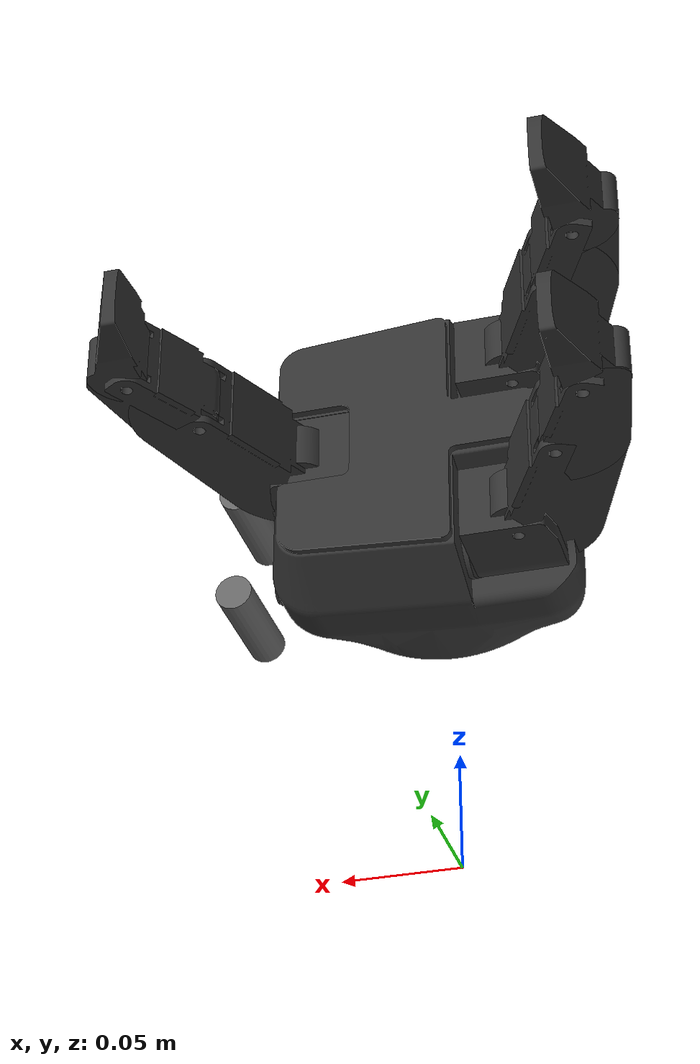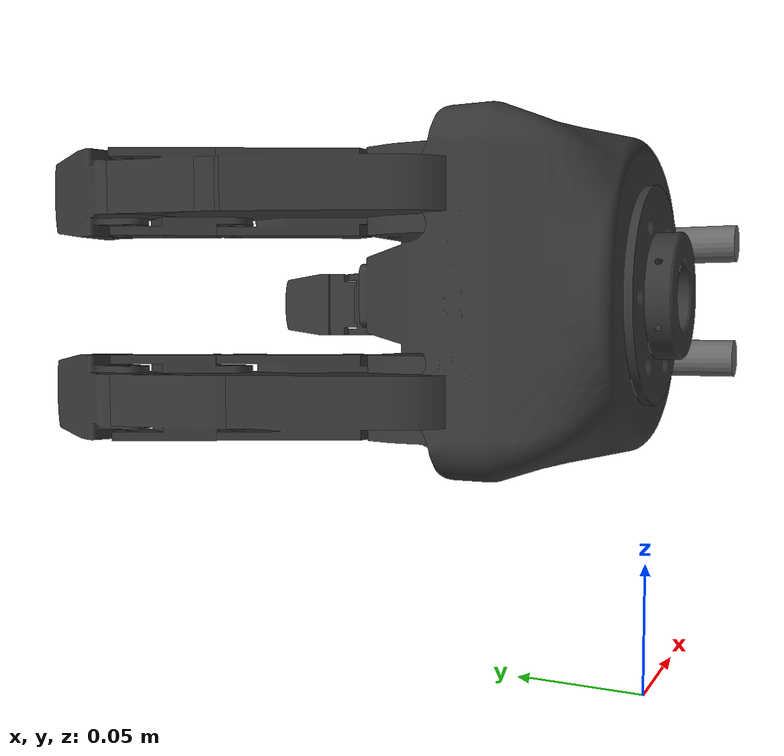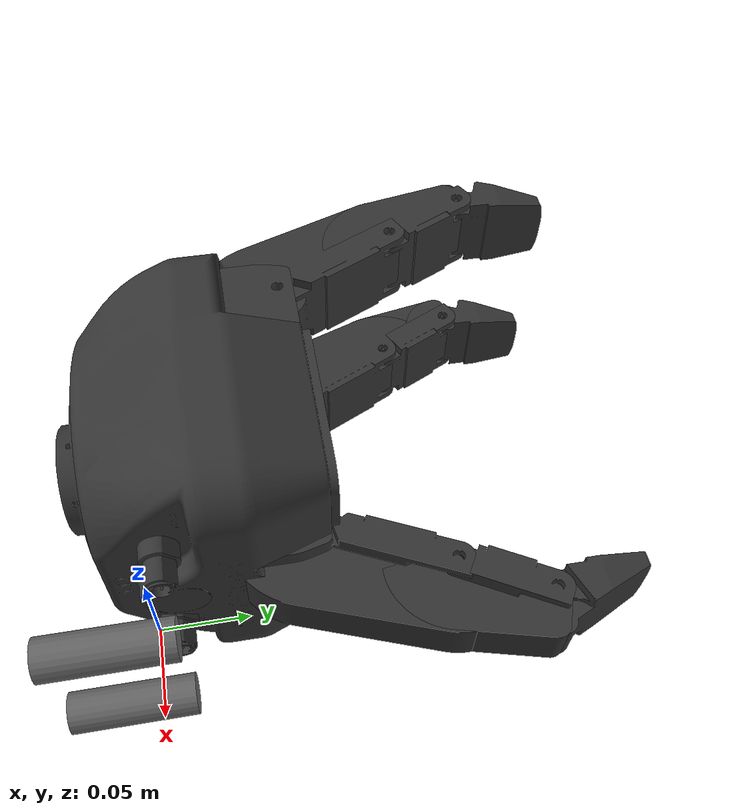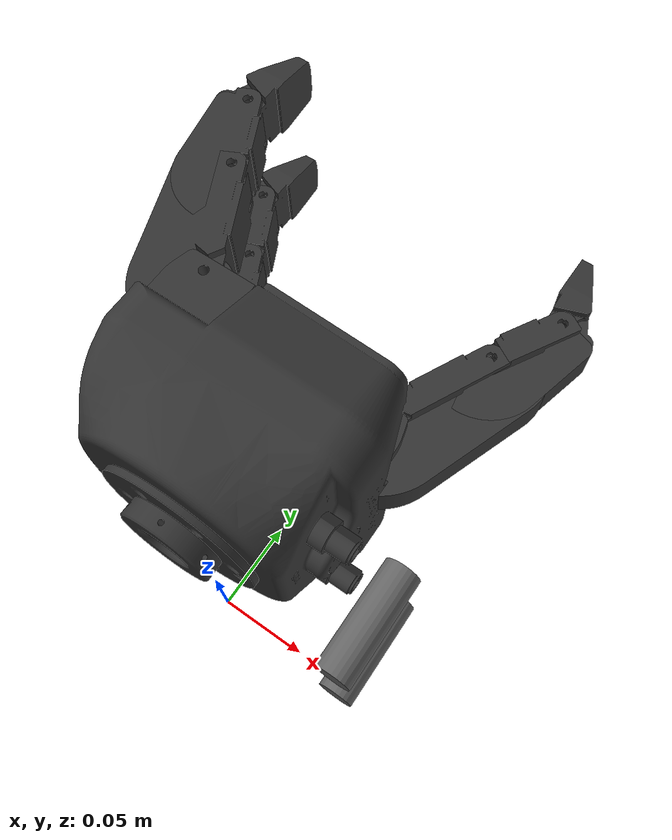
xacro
<?xml version="1.0"?>
<robot xmlns:xacro="http://www.ros.org/wiki/xacro" name="robotiq_3f_calibration">
  <xacro:include filename="$(find robotiq_3f_description)/urdf/robotiq_3f.xacro"/>

  <link name="world"/>
  <xacro:robotiq_3f_gripper
    parent="world"
    prefix=""
    include_cable_plugs="true"
    articulated="true"
    calibrate_middle_pivots="true">
    <!-- Orient the palm vertically for convenient side/front inspection. -->
    <origin xyz="0 0 0.15" rpy="0 0 0"/>
  </xacro:robotiq_3f_gripper>
</robot>

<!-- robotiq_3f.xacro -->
<robot xmlns:xacro="http://www.ros.org/wiki/xacro">

  <xacro:macro name="robotiq_3f_part" params="prefix link_name mesh_name">
    <link name="${prefix}${link_name}">
      <visual>
        <geometry>
          <mesh filename="package://robotiq_3f_description/meshes/visual/${mesh_name}.stl"/>
        </geometry>
        <material name="Robotiq-Black">
          <color rgba="0.2 0.2 0.2 1.0"/>
        </material>
      </visual>
      <collision>
        <geometry>
          <mesh filename="package://robotiq_3f_description/meshes/collision/${mesh_name}.stl"/>
        </geometry>
      </collision>
      <inertial>
        <mass value="0.01"/>
        <inertia ixx="1e-6" ixy="0" ixz="0" iyy="1e-6" iyz="0" izz="1e-6"/>
      </inertial>
    </link>
  </xacro:macro>

  <xacro:macro name="robotiq_3f_fixed_joint" params="prefix joint_name parent child xyz rpy">
    <joint name="${prefix}${joint_name}" type="fixed">
      <parent link="${prefix}${parent}"/>
      <child link="${prefix}${child}"/>
      <origin xyz="${xyz}" rpy="${rpy}"/>
    </joint>
  </xacro:macro>

  <xacro:macro name="robotiq_3f_articulated_joint"
               params="prefix joint_name parent child xyz rpy axis lower upper mesh_xyz:='0 0 0'">
    <link name="${prefix}${joint_name}_frame"/>
    <joint name="${prefix}${joint_name}" type="revolute">
      <parent link="${prefix}${parent}"/>
      <child link="${prefix}${joint_name}_frame"/>
      <origin xyz="${xyz}" rpy="0 0 0"/>
      <axis xyz="${axis}"/>
      <limit lower="${lower}" upper="${upper}" effort="100" velocity="1.25"/>
      <dynamics damping="1.0" friction="0.1"/>
    </joint>
    <joint name="${prefix}${joint_name}_mesh_joint" type="fixed">
      <parent link="${prefix}${joint_name}_frame"/>
      <child link="${prefix}${child}"/>
      <origin xyz="${mesh_xyz}" rpy="${rpy}"/>
    </joint>
  </xacro:macro>

  <xacro:macro name="robotiq_3f_pivot_calibration_joint"
               params="prefix joint_name parent child xyz rpy axis lower upper">
    <link name="${prefix}${joint_name}_pivot_x_link"/>
    <joint name="${prefix}${joint_name}_pivot_x_joint" type="prismatic">
      <parent link="${prefix}${parent}"/>
      <child link="${prefix}${joint_name}_pivot_x_link"/>
      <origin xyz="${xyz}" rpy="0 0 0"/>
      <axis xyz="1 0 0"/>
      <limit lower="-0.04" upper="0.04" effort="10" velocity="0.1"/>
    </joint>
    <link name="${prefix}${joint_name}_pivot_y_link"/>
    <joint name="${prefix}${joint_name}_pivot_y_joint" type="prismatic">
      <parent link="${prefix}${joint_name}_pivot_x_link"/>
      <child link="${prefix}${joint_name}_pivot_y_link"/>
      <origin xyz="0 0 0" rpy="0 0 0"/>
      <axis xyz="0 1 0"/>
      <limit lower="-0.04" upper="0.04" effort="10" velocity="0.1"/>
    </joint>
    <link name="${prefix}${joint_name}_pivot_z_link"/>
    <joint name="${prefix}${joint_name}_pivot_z_joint" type="prismatic">
      <parent link="${prefix}${joint_name}_pivot_y_link"/>
      <child link="${prefix}${joint_name}_pivot_z_link"/>
      <origin xyz="0 0 0" rpy="0 0 0"/>
      <axis xyz="0 0 1"/>
      <limit lower="-0.04" upper="0.04" effort="10" velocity="0.1"/>
    </joint>

    <link name="${prefix}${joint_name}_frame"/>
    <joint name="${prefix}${joint_name}" type="revolute">
      <parent link="${prefix}${joint_name}_pivot_z_link"/>
      <child link="${prefix}${joint_name}_frame"/>
      <origin xyz="0 0 0" rpy="0 0 0"/>
      <axis xyz="${axis}"/>
      <limit lower="${lower}" upper="${upper}" effort="100" velocity="1.25"/>
      <dynamics damping="1.0" friction="0.1"/>
    </joint>

    <link name="${prefix}${joint_name}_compensate_x_link"/>
    <joint name="${prefix}${joint_name}_compensate_x_joint" type="prismatic">
      <parent link="${prefix}${joint_name}_frame"/>
      <child link="${prefix}${joint_name}_compensate_x_link"/>
      <origin xyz="0 0 0" rpy="0 0 0"/>
      <axis xyz="1 0 0"/>
      <limit lower="-0.04" upper="0.04" effort="10" velocity="0.1"/>
      <mimic joint="${prefix}${joint_name}_pivot_x_joint" multiplier="-1"/>
    </joint>
    <link name="${prefix}${joint_name}_compensate_y_link"/>
    <joint name="${prefix}${joint_name}_compensate_y_joint" type="prismatic">
      <parent link="${prefix}${joint_name}_compensate_x_link"/>
      <child link="${prefix}${joint_name}_compensate_y_link"/>
      <origin xyz="0 0 0" rpy="0 0 0"/>
      <axis xyz="0 1 0"/>
      <limit lower="-0.04" upper="0.04" effort="10" velocity="0.1"/>
      <mimic joint="${prefix}${joint_name}_pivot_y_joint" multiplier="-1"/>
    </joint>
    <link name="${prefix}${joint_name}_compensate_z_link"/>
    <joint name="${prefix}${joint_name}_compensate_z_joint" type="prismatic">
      <parent link="${prefix}${joint_name}_compensate_y_link"/>
      <child link="${prefix}${joint_name}_compensate_z_link"/>
      <origin xyz="0 0 0" rpy="0 0 0"/>
      <axis xyz="0 0 1"/>
      <limit lower="-0.04" upper="0.04" effort="10" velocity="0.1"/>
      <mimic joint="${prefix}${joint_name}_pivot_z_joint" multiplier="-1"/>
    </joint>
    <joint name="${prefix}${joint_name}_mesh_joint" type="fixed">
      <parent link="${prefix}${joint_name}_compensate_z_link"/>
      <child link="${prefix}${child}"/>
      <origin xyz="0 0 0" rpy="${rpy}"/>
    </joint>
  </xacro:macro>

  <xacro:macro name="robotiq_3f_gripper"
               params="parent prefix:='' include_cable_plugs:=true articulated:=true calibrate_middle_pivots:=false *origin">
    <link name="${prefix}robotiq_3f_frame"/>

    <joint name="${prefix}robotiq_3f_mount_joint" type="fixed">
      <parent link="${parent}"/>
      <child link="${prefix}robotiq_3f_frame"/>
      <xacro:insert_block name="origin"/>
    </joint>

    <xacro:robotiq_3f_part prefix="${prefix}" link_name="AGS_wrist" mesh_name="AGS_wrist"/>
    <xacro:robotiq_3f_part prefix="${prefix}" link_name="AGS_palm" mesh_name="AGS_palm"/>

    <xacro:robotiq_3f_part prefix="${prefix}" link_name="AGS_finger-base" mesh_name="AGS_finger-base"/>
    <xacro:robotiq_3f_part prefix="${prefix}" link_name="AGS_finger-prox" mesh_name="AGS_finger-prox"/>
    <xacro:robotiq_3f_part prefix="${prefix}" link_name="AGS_finger-med" mesh_name="AGS_finger-med"/>
    <xacro:robotiq_3f_part prefix="${prefix}" link_name="AGS_finger-dist" mesh_name="AGS_finger-dist"/>

    <xacro:robotiq_3f_part prefix="${prefix}" link_name="AGS_finger-base001" mesh_name="AGS_finger-base"/>
    <xacro:robotiq_3f_part prefix="${prefix}" link_name="AGS_finger-prox001" mesh_name="AGS_finger-prox"/>
    <xacro:robotiq_3f_part prefix="${prefix}" link_name="AGS_finger-med001" mesh_name="AGS_finger-med"/>
    <xacro:robotiq_3f_part prefix="${prefix}" link_name="AGS_finger-dist001" mesh_name="AGS_finger-dist"/>

    <xacro:robotiq_3f_part prefix="${prefix}" link_name="AGS_finger-base002" mesh_name="AGS_finger-base"/>
    <xacro:robotiq_3f_part prefix="${prefix}" link_name="AGS_finger-prox002" mesh_name="AGS_finger-prox"/>
    <xacro:robotiq_3f_part prefix="${prefix}" link_name="AGS_finger-med002" mesh_name="AGS_finger-med"/>
    <xacro:robotiq_3f_part prefix="${prefix}" link_name="AGS_finger-dist002" mesh_name="AGS_finger-dist"/>

    <xacro:robotiq_3f_fixed_joint prefix="${prefix}"
      joint_name="robotiq_3f_frame_to_AGS_wrist_joint"
      parent="robotiq_3f_frame" child="AGS_wrist"
      xyz="0 0 0" rpy="0 1.0432366 3.1415927"/>
    <xacro:robotiq_3f_fixed_joint prefix="${prefix}"
      joint_name="AGS_wrist_to_AGS_palm_joint"
      parent="AGS_wrist" child="AGS_palm"
      xyz="0 -0.04127 0" rpy="0 1.0432366 3.1415927"/>

    <xacro:if value="${articulated}">
      <xacro:robotiq_3f_articulated_joint prefix="${prefix}"
        joint_name="robotiq_3f_finger_b_scissor_joint"
        parent="AGS_palm" child="AGS_finger-base"
        xyz="-0.04056 0.01985 0.03651" rpy="0 0 0"
        axis="1 0 0" lower="-0.2967" upper="0.2967"/>
      <xacro:robotiq_3f_articulated_joint prefix="${prefix}"
        joint_name="robotiq_3f_finger_b_proximal_joint"
        parent="AGS_finger-base" child="AGS_finger-prox"
        xyz="-0.00397 0.02151 0" rpy="-3.1415927 0 -1.1150822"
        axis="0 0 -1" lower="0" upper="1.2218"/>
      <xacro:if value="${calibrate_middle_pivots}">
        <xacro:robotiq_3f_pivot_calibration_joint prefix="${prefix}"
          joint_name="robotiq_3f_finger_b_middle_joint"
          parent="AGS_finger-prox" child="AGS_finger-med"
          xyz="-0.069809366 -0.0013289835 0.00804" rpy="0 0 0"
          axis="0 0 1" lower="0" upper="1.5708"/>
      </xacro:if>
      <xacro:unless value="${calibrate_middle_pivots}">
        <xacro:robotiq_3f_articulated_joint prefix="${prefix}"
          joint_name="robotiq_3f_finger_b_middle_joint"
          parent="AGS_finger-prox" child="AGS_finger-med"
          xyz="-0.058189366 -0.0013289835 0.00804" rpy="0 0 0"
          mesh_xyz="-0.01162 0 0"
          axis="0 0 1" lower="0" upper="1.5708"/>
      </xacro:unless>
      <xacro:robotiq_3f_articulated_joint prefix="${prefix}"
        joint_name="robotiq_3f_finger_b_distal_joint"
        parent="AGS_finger-med" child="AGS_finger-dist"
        xyz="-0.024675479 0.0014480048 -0.00804" rpy="0.4557141 -1.5707963 0"
        axis="0 0 1" lower="-1.2218" upper="0"/>

      <xacro:robotiq_3f_articulated_joint prefix="${prefix}"
        joint_name="robotiq_3f_finger_c_scissor_joint"
        parent="AGS_palm" child="AGS_finger-base001"
        xyz="-0.04056 0.01985 -0.03651" rpy="0 0 0"
        axis="1 0 0" lower="-0.2967" upper="0.2967"/>
      <xacro:robotiq_3f_articulated_joint prefix="${prefix}"
        joint_name="robotiq_3f_finger_c_proximal_joint"
        parent="AGS_finger-base001" child="AGS_finger-prox001"
        xyz="-0.00397 0.02151 0" rpy="-3.1415927 0 -1.1150822"
        axis="0 0 -1" lower="0" upper="1.2218"/>
      <xacro:if value="${calibrate_middle_pivots}">
        <xacro:robotiq_3f_pivot_calibration_joint prefix="${prefix}"
          joint_name="robotiq_3f_finger_c_middle_joint"
          parent="AGS_finger-prox001" child="AGS_finger-med001"
          xyz="-0.070573474 -0.0012468926 0.00805" rpy="0 0 0"
          axis="0 0 1" lower="0" upper="1.5708"/>
      </xacro:if>
      <xacro:unless value="${calibrate_middle_pivots}">
        <xacro:robotiq_3f_articulated_joint prefix="${prefix}"
          joint_name="robotiq_3f_finger_c_middle_joint"
          parent="AGS_finger-prox001" child="AGS_finger-med001"
          xyz="-0.058953474 -0.0012468926 0.00805" rpy="0 0 0"
          mesh_xyz="-0.01162 0 0"
          axis="0 0 1" lower="0" upper="1.5708"/>
      </xacro:unless>
      <xacro:robotiq_3f_articulated_joint prefix="${prefix}"
        joint_name="robotiq_3f_finger_c_distal_joint"
        parent="AGS_finger-med001" child="AGS_finger-dist001"
        xyz="-0.024679703 0.0014793442 -0.00805" rpy="0.4557141 -1.5707963 0"
        axis="0 0 1" lower="-1.2218" upper="0"/>

      <xacro:robotiq_3f_fixed_joint prefix="${prefix}"
        joint_name="AGS_palm_to_AGS_finger-base002_joint"
        parent="AGS_palm" child="AGS_finger-base002"
        xyz="0.04051 0.01985 0" rpy="3.1415927 0 3.1415927"/>
      <xacro:robotiq_3f_articulated_joint prefix="${prefix}"
        joint_name="robotiq_3f_finger_a_proximal_joint"
        parent="AGS_finger-base002" child="AGS_finger-prox002"
        xyz="-0.00397 0.02151 0" rpy="3.1415927 0 -1.1136946"
        axis="0 0 -1" lower="0" upper="1.2218"/>
      <xacro:if value="${calibrate_middle_pivots}">
        <xacro:robotiq_3f_pivot_calibration_joint prefix="${prefix}"
          joint_name="robotiq_3f_finger_a_middle_joint"
          parent="AGS_finger-prox002" child="AGS_finger-med002"
          xyz="-0.069807455 -0.001425852 0.00805" rpy="0 0 -0.066497045"
          axis="0 0 1" lower="0" upper="1.5708"/>
      </xacro:if>
      <xacro:unless value="${calibrate_middle_pivots}">
        <xacro:robotiq_3f_articulated_joint prefix="${prefix}"
          joint_name="robotiq_3f_finger_a_middle_joint"
          parent="AGS_finger-prox002" child="AGS_finger-med002"
          xyz="-0.058187455 -0.001425852 0.00805" rpy="0 0 -0.066497045"
          mesh_xyz="-0.01162 0 0"
          axis="0 0 1" lower="0" upper="1.5708"/>
      </xacro:unless>
      <xacro:robotiq_3f_articulated_joint prefix="${prefix}"
        joint_name="robotiq_3f_finger_a_distal_joint"
        parent="AGS_finger-med002" child="AGS_finger-dist002"
        xyz="-0.024716867 -0.00022913109 -0.00805" rpy="0.52359878 -1.5707963 0"
        axis="0 0 1" lower="-1.2218" upper="0"/>
    </xacro:if>

    <xacro:unless value="${articulated}">
      <xacro:robotiq_3f_fixed_joint prefix="${prefix}"
        joint_name="AGS_palm_to_AGS_finger-base_joint"
        parent="AGS_palm" child="AGS_finger-base"
        xyz="-0.04056 0.01985 0.03651" rpy="0 0 0"/>
      <xacro:robotiq_3f_fixed_joint prefix="${prefix}"
        joint_name="AGS_finger-base_to_AGS_finger-prox_joint"
        parent="AGS_finger-base" child="AGS_finger-prox"
        xyz="-0.00397 0.02151 0" rpy="-3.1415927 0 -1.1150822"/>
      <xacro:robotiq_3f_fixed_joint prefix="${prefix}"
        joint_name="AGS_finger-prox_to_AGS_finger-med_joint"
        parent="AGS_finger-prox" child="AGS_finger-med"
        xyz="-0.069809366 -0.0013289835 0.00804" rpy="0 0 0"/>
      <xacro:robotiq_3f_fixed_joint prefix="${prefix}"
        joint_name="AGS_finger-med_to_AGS_finger-dist_joint"
        parent="AGS_finger-med" child="AGS_finger-dist"
        xyz="-0.024675479 0.0014480048 -0.00804" rpy="0.4557141 -1.5707963 0"/>

      <xacro:robotiq_3f_fixed_joint prefix="${prefix}"
        joint_name="AGS_palm_to_AGS_finger-base001_joint"
        parent="AGS_palm" child="AGS_finger-base001"
        xyz="-0.04056 0.01985 -0.03651" rpy="0 0 0"/>
      <xacro:robotiq_3f_fixed_joint prefix="${prefix}"
        joint_name="AGS_finger-base001_to_AGS_finger-prox001_joint"
        parent="AGS_finger-base001" child="AGS_finger-prox001"
        xyz="-0.00397 0.02151 0" rpy="-3.1415927 0 -1.1150822"/>
      <xacro:robotiq_3f_fixed_joint prefix="${prefix}"
        joint_name="AGS_finger-prox001_to_AGS_finger-med001_joint"
        parent="AGS_finger-prox001" child="AGS_finger-med001"
        xyz="-0.070573474 -0.0012468926 0.00805" rpy="0 0 0"/>
      <xacro:robotiq_3f_fixed_joint prefix="${prefix}"
        joint_name="AGS_finger-med001_to_AGS_finger-dist001_joint"
        parent="AGS_finger-med001" child="AGS_finger-dist001"
        xyz="-0.024679703 0.0014793442 -0.00805" rpy="0.4557141 -1.5707963 0"/>

      <xacro:robotiq_3f_fixed_joint prefix="${prefix}"
        joint_name="AGS_palm_to_AGS_finger-base002_joint"
        parent="AGS_palm" child="AGS_finger-base002"
        xyz="0.04051 0.01985 0" rpy="3.1415927 0 3.1415927"/>
      <xacro:robotiq_3f_fixed_joint prefix="${prefix}"
        joint_name="AGS_finger-base002_to_AGS_finger-prox002_joint"
        parent="AGS_finger-base002" child="AGS_finger-prox002"
        xyz="-0.00397 0.02151 0" rpy="3.1415927 0 -1.1136946"/>
      <xacro:robotiq_3f_fixed_joint prefix="${prefix}"
        joint_name="AGS_finger-prox002_to_AGS_finger-med002_joint"
        parent="AGS_finger-prox002" child="AGS_finger-med002"
        xyz="-0.069807455 -0.001425852 0.00805" rpy="0 0 -0.066497045"/>
      <xacro:robotiq_3f_fixed_joint prefix="${prefix}"
        joint_name="AGS_finger-med002_to_AGS_finger-dist002_joint"
        parent="AGS_finger-med002" child="AGS_finger-dist002"
        xyz="-0.024716867 -0.00022913109 -0.00805" rpy="0.52359878 -1.5707963 0"/>
    </xacro:unless>

    <xacro:if value="${include_cable_plugs}">
      <link name="${prefix}gripper_power_plug">
        <visual>
          <geometry><cylinder radius="0.008" length="0.048"/></geometry>
          <material name="Robotiq-Grey"><color rgba="0.4 0.4 0.4 1.0"/></material>
        </visual>
        <collision>
          <geometry><cylinder radius="0.008" length="0.048"/></geometry>
        </collision>
        <inertial>
          <mass value="0.1"/>
          <inertia ixx="0.0001" ixy="0" ixz="0" iyy="0.0001" iyz="0" izz="0.0001"/>
        </inertial>
      </link>
      <link name="${prefix}gripper_ethernet_plug">
        <visual>
          <geometry><cylinder radius="0.008" length="0.048"/></geometry>
          <material name="Robotiq-Grey"><color rgba="0.4 0.4 0.4 1.0"/></material>
        </visual>
        <collision>
          <geometry><cylinder radius="0.008" length="0.048"/></geometry>
        </collision>
        <inertial>
          <mass value="0.1"/>
          <inertia ixx="0.0001" ixy="0" ixz="0" iyy="0.0001" iyz="0" izz="0.0001"/>
        </inertial>
      </link>
      <joint name="${prefix}gripper_power_plug_joint" type="fixed">
        <parent link="${prefix}AGS_palm"/>
        <child link="${prefix}gripper_power_plug"/>
        <origin xyz="0.09 -0.035 0.025" rpy="1.5707963267948966 0 0"/>
      </joint>
      <joint name="${prefix}gripper_ethernet_plug_joint" type="fixed">
        <parent link="${prefix}AGS_palm"/>
        <child link="${prefix}gripper_ethernet_plug"/>
        <origin xyz="0.09 -0.035 -0.025" rpy="1.5707963267948966 0 0"/>
      </joint>
    </xacro:if>
  </xacro:macro>
</robot>
